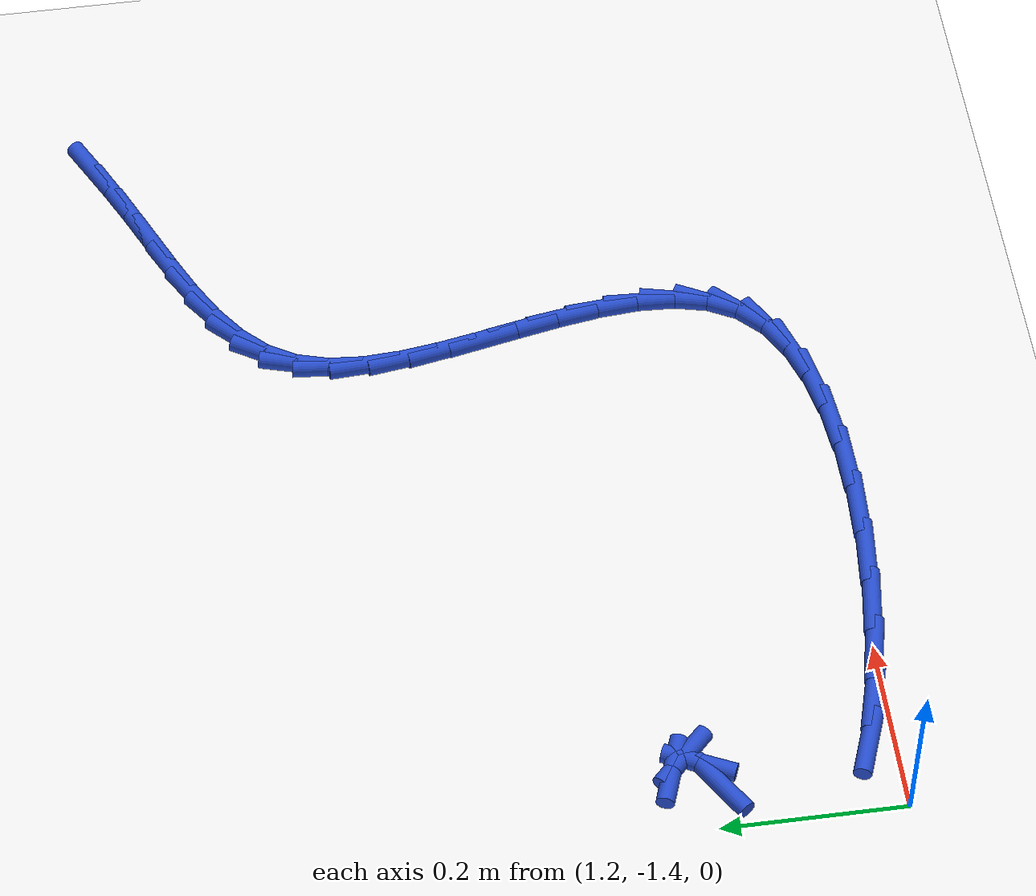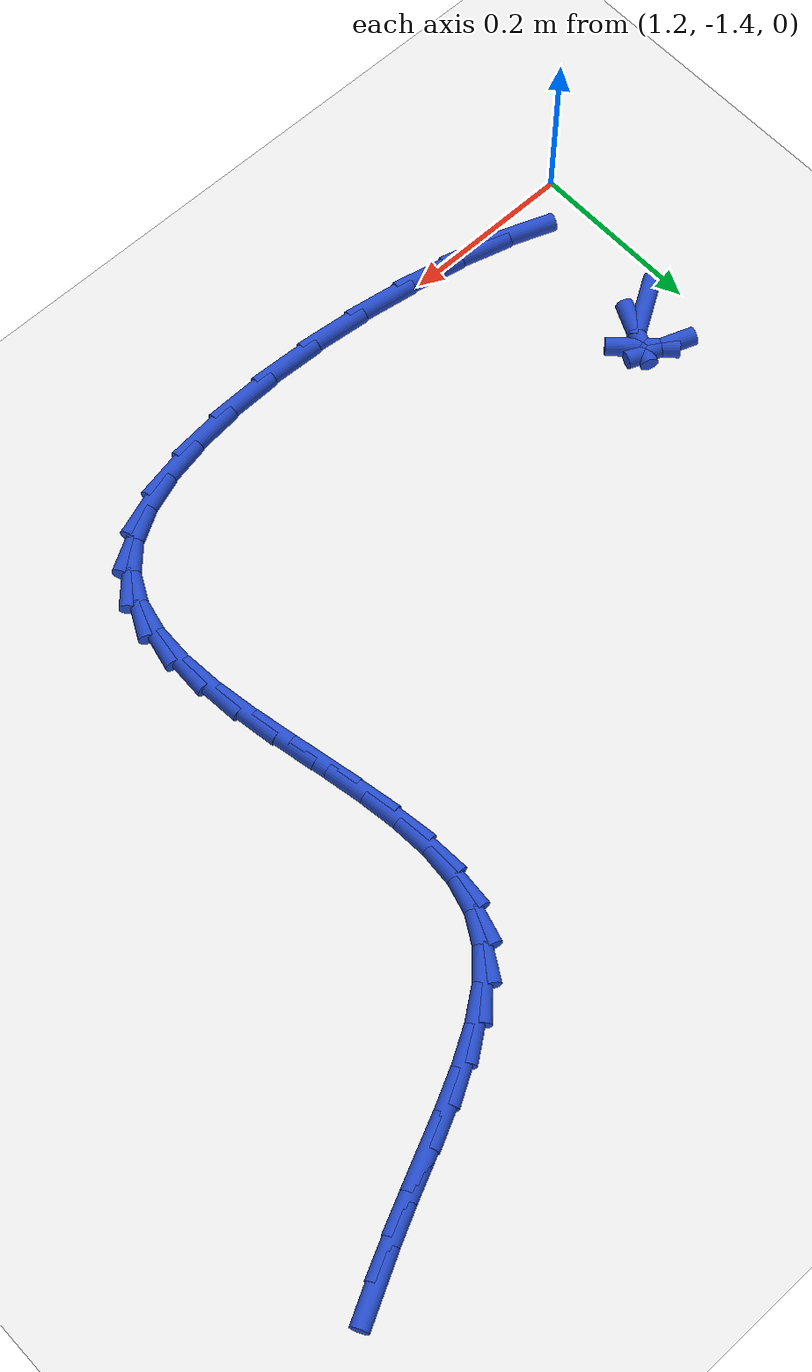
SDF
<sdf version="1.6">
 <world name="default">
  <model name="ground_plane">
   <static>1</static>
   <link name="link">
    <collision name="collision">
     <geometry><plane><normal>0 0 1</normal><size>100 100</size></plane></geometry>
     <surface><friction><ode><mu>100</mu><mu2>50</mu2></ode></friction></surface>
    </collision>
    <visual name="visual">
     <cast_shadows>0</cast_shadows>
     <geometry><plane><normal>0 0 1</normal><size>100 100</size></plane></geometry>
     <material>
      <script><uri>file://media/materials/scripts/gazebo.material</uri><name>Gazebo/WhiteGlow</name></script>
     </material>
    </visual>
   </link>
  </model>
  <model name="line">
   <link name="link_130">
    <pose>2.164545561706393 -0.639430117328216 0.01 0 1.57 0.4788285845323799</pose>
    <collision name="collision">
     <geometry><cylinder><radius>0.01</radius><length>0.08</length></cylinder></geometry>
    </collision>
    <visual name="visual">
     <material>
      <script><name>Gazebo/Blue</name><uri>file://media/materials/scripts/gazebo.material</uri></script>
     </material>
     <geometry><cylinder><radius>0.01</radius><length>0.08</length></cylinder></geometry>
    </visual>
   </link>
   <link name="link_131">
    <pose>2.1269629104287087 -0.6589401299998805 0.01 0 1.57 0.4505539917640444</pose>
    <collision name="collision">
     <geometry><cylinder><radius>0.01</radius><length>0.08</length></cylinder></geometry>
    </collision>
    <visual name="visual">
     <material>
      <script><name>Gazebo/Blue</name><uri>file://media/materials/scripts/gazebo.material</uri></script>
     </material>
     <geometry><cylinder><radius>0.01</radius><length>0.08</length></cylinder></geometry>
    </visual>
   </link>
   <link name="link_132">
    <pose>2.088017881046554 -0.6777793404851532 0.01 0 1.57 0.4290296721623705</pose>
    <collision name="collision">
     <geometry><cylinder><radius>0.01</radius><length>0.08</length></cylinder></geometry>
    </collision>
    <visual name="visual">
     <material>
      <script><name>Gazebo/Blue</name><uri>file://media/materials/scripts/gazebo.material</uri></script>
     </material>
     <geometry><cylinder><radius>0.01</radius><length>0.08</length></cylinder></geometry>
    </visual>
   </link>
   <link name="link_133">
    <pose>2.0477845221644597 -0.6961839748540937 0.01 0 1.57 0.42638433185018965</pose>
    <collision name="collision">
     <geometry><cylinder><radius>0.01</radius><length>0.08</length></cylinder></geometry>
    </collision>
    <visual name="visual">
     <material>
      <script><name>Gazebo/Blue</name><uri>file://media/materials/scripts/gazebo.material</uri></script>
     </material>
     <geometry><cylinder><radius>0.01</radius><length>0.08</length></cylinder></geometry>
    </visual>
   </link>
   <link name="link_134">
    <pose>2.0070804984382105 -0.7146738625303719 0.01 0 1.57 0.4558007332169035</pose>
    <collision name="collision">
     <geometry><cylinder><radius>0.01</radius><length>0.08</length></cylinder></geometry>
    </collision>
    <visual name="visual">
     <material>
      <script><name>Gazebo/Blue</name><uri>file://media/materials/scripts/gazebo.material</uri></script>
     </material>
     <geometry><cylinder><radius>0.01</radius><length>0.08</length></cylinder></geometry>
    </visual>
   </link>
   <link name="link_135">
    <pose>1.967514231754095 -0.7340704151884521 0.01 0 1.57 0.5216241222952303</pose>
    <collision name="collision">
     <geometry><cylinder><radius>0.01</radius><length>0.08</length></cylinder></geometry>
    </collision>
    <visual name="visual">
     <material>
      <script><name>Gazebo/Blue</name><uri>file://media/materials/scripts/gazebo.material</uri></script>
     </material>
     <geometry><cylinder><radius>0.01</radius><length>0.08</length></cylinder></geometry>
    </visual>
   </link>
   <link name="link_136">
    <pose>1.9307324515139426 -0.755209654380914 0.01 0 1.57 0.6326322385269567</pose>
    <collision name="collision">
     <geometry><cylinder><radius>0.01</radius><length>0.08</length></cylinder></geometry>
    </collision>
    <visual name="visual">
     <material>
      <script><name>Gazebo/Blue</name><uri>file://media/materials/scripts/gazebo.material</uri></script>
     </material>
     <geometry><cylinder><radius>0.01</radius><length>0.08</length></cylinder></geometry>
    </visual>
   </link>
   <link name="link_137">
    <pose>1.898381887119576 -0.7789276016603383 0.01 0 1.57 0.8015011249964182</pose>
    <collision name="collision">
     <geometry><cylinder><radius>0.01</radius><length>0.08</length></cylinder></geometry>
    </collision>
    <visual name="visual">
     <material>
      <script><name>Gazebo/Blue</name><uri>file://media/materials/scripts/gazebo.material</uri></script>
     </material>
     <geometry><cylinder><radius>0.01</radius><length>0.08</length></cylinder></geometry>
    </visual>
   </link>
   <link name="link_138">
    <pose>1.8721092679728222 -0.8060602785793053 0.01 0 1.57 1.0367474833339803</pose>
    <collision name="collision">
     <geometry><cylinder><radius>0.01</radius><length>0.08</length></cylinder></geometry>
    </collision>
    <visual name="visual">
     <material>
      <script><name>Gazebo/Blue</name><uri>file://media/materials/scripts/gazebo.material</uri></script>
     </material>
     <geometry><cylinder><radius>0.01</radius><length>0.08</length></cylinder></geometry>
    </visual>
   </link>
   <link name="link_139">
    <pose>1.8535527545870234 -0.837439198052412 0.01 0 1.57 1.2939406587728848</pose>
    <collision name="collision">
     <geometry><cylinder><radius>0.01</radius><length>0.08</length></cylinder></geometry>
    </collision>
    <visual name="visual">
     <material>
      <script><name>Gazebo/Blue</name><uri>file://media/materials/scripts/gazebo.material</uri></script>
     </material>
     <geometry><cylinder><radius>0.01</radius><length>0.08</length></cylinder></geometry>
    </visual>
   </link>
   <link name="link_140">
    <pose>1.8433439676148429 -0.8733662682668627 0.01 0 1.57 1.491275211549496</pose>
    <collision name="collision">
     <geometry><cylinder><radius>0.01</radius><length>0.08</length></cylinder></geometry>
    </collision>
    <visual name="visual">
     <material>
      <script><name>Gazebo/Blue</name><uri>file://media/materials/scripts/gazebo.material</uri></script>
     </material>
     <geometry><cylinder><radius>0.01</radius><length>0.08</length></cylinder></geometry>
    </visual>
   </link>
   <link name="link_141">
    <pose>1.8401757639081748 -0.9131232902941033 0.01 0 1.57 -1.51600763312741</pose>
    <collision name="collision">
     <geometry><cylinder><radius>0.01</radius><length>0.08</length></cylinder></geometry>
    </collision>
    <visual name="visual">
     <material>
      <script><name>Gazebo/Blue</name><uri>file://media/materials/scripts/gazebo.material</uri></script>
     </material>
     <geometry><cylinder><radius>0.01</radius><length>0.08</length></cylinder></geometry>
    </visual>
   </link>
   <link name="link_142">
    <pose>1.8425204774825834 -0.9558760340962505 0.01 0 1.57 -1.4307839772518796</pose>
    <collision name="collision">
     <geometry><cylinder><radius>0.01</radius><length>0.08</length></cylinder></geometry>
    </collision>
    <visual name="visual">
     <material>
      <script><name>Gazebo/Blue</name><uri>file://media/materials/scripts/gazebo.material</uri></script>
     </material>
     <geometry><cylinder><radius>0.01</radius><length>0.08</length></cylinder></geometry>
    </visual>
   </link>
   <link name="link_143">
    <pose>1.8488504423536327 -1.0007902696354216 0.01 0 1.57 -1.3829996136641944</pose>
    <collision name="collision">
     <geometry><cylinder><radius>0.01</radius><length>0.08</length></cylinder></geometry>
    </collision>
    <visual name="visual">
     <material>
      <script><name>Gazebo/Blue</name><uri>file://media/materials/scripts/gazebo.material</uri></script>
     </material>
     <geometry><cylinder><radius>0.01</radius><length>0.08</length></cylinder></geometry>
    </visual>
   </link>
   <link name="link_144">
    <pose>1.8576379925368858 -1.047031766873731 0.01 0 1.57 -1.3657883671007762</pose>
    <collision name="collision">
     <geometry><cylinder><radius>0.01</radius><length>0.08</length></cylinder></geometry>
    </collision>
    <visual name="visual">
     <material>
      <script><name>Gazebo/Blue</name><uri>file://media/materials/scripts/gazebo.material</uri></script>
     </material>
     <geometry><cylinder><radius>0.01</radius><length>0.08</length></cylinder></geometry>
    </visual>
   </link>
   <link name="link_145">
    <pose>1.8673554620479076 -1.0937662957732963 0.01 0 1.57 -1.3766971513679065</pose>
    <collision name="collision">
     <geometry><cylinder><radius>0.01</radius><length>0.08</length></cylinder></geometry>
    </collision>
    <visual name="visual">
     <material>
      <script><name>Gazebo/Blue</name><uri>file://media/materials/scripts/gazebo.material</uri></script>
     </material>
     <geometry><cylinder><radius>0.01</radius><length>0.08</length></cylinder></geometry>
    </visual>
   </link>
   <link name="link_146">
    <pose>1.8764751849022607 -1.1401596262962335 0.01 0 1.57 -1.4173324236944869</pose>
    <collision name="collision">
     <geometry><cylinder><radius>0.01</radius><length>0.08</length></cylinder></geometry>
    </collision>
    <visual name="visual">
     <material>
      <script><name>Gazebo/Blue</name><uri>file://media/materials/scripts/gazebo.material</uri></script>
     </material>
     <geometry><cylinder><radius>0.01</radius><length>0.08</length></cylinder></geometry>
    </visual>
   </link>
   <link name="link_147">
    <pose>1.8834694951155102 -1.1853775284046597 0.01 0 1.57 -1.4936213426711011</pose>
    <collision name="collision">
     <geometry><cylinder><radius>0.01</radius><length>0.08</length></cylinder></geometry>
    </collision>
    <visual name="visual">
     <material>
      <script><name>Gazebo/Blue</name><uri>file://media/materials/scripts/gazebo.material</uri></script>
     </material>
     <geometry><cylinder><radius>0.01</radius><length>0.08</length></cylinder></geometry>
    </visual>
   </link>
   <link name="link_148">
    <pose>1.88681072670322 -1.228585772060692 0.01 0 1.57 1.5252551278413624</pose>
    <collision name="collision">
     <geometry><cylinder><radius>0.01</radius><length>0.08</length></cylinder></geometry>
    </collision>
    <visual name="visual">
     <material>
      <script><name>Gazebo/Blue</name><uri>file://media/materials/scripts/gazebo.material</uri></script>
     </material>
     <geometry><cylinder><radius>0.01</radius><length>0.08</length></cylinder></geometry>
    </visual>
   </link>
   <link name="link_149">
    <pose>1.884971213680953 -1.2689501272264452 0.01 0 1.57 1.3418797510108087</pose>
    <collision name="collision">
     <geometry><cylinder><radius>0.01</radius><length>0.08</length></cylinder></geometry>
    </collision>
    <visual name="visual">
     <material>
      <script><name>Gazebo/Blue</name><uri>file://media/materials/scripts/gazebo.material</uri></script>
     </material>
     <geometry><cylinder><radius>0.01</radius><length>0.08</length></cylinder></geometry>
    </visual>
   </link>
   <link name="link_150">
    <pose>1.876423290064274 -1.3056363638640363 0.01 0 1.57 1.0899671004875449</pose>
    <collision name="collision">
     <geometry><cylinder><radius>0.01</radius><length>0.08</length></cylinder></geometry>
    </collision>
    <visual name="visual">
     <material>
      <script><name>Gazebo/Blue</name><uri>file://media/materials/scripts/gazebo.material</uri></script>
     </material>
     <geometry><cylinder><radius>0.01</radius><length>0.08</length></cylinder></geometry>
    </visual>
   </link>
   <link name="link_151">
    <pose>1.859639289868747 -1.3378102519355826 0.01 0 1.57 0.7907141610808374</pose>
    <collision name="collision">
     <geometry><cylinder><radius>0.01</radius><length>0.08</length></cylinder></geometry>
    </collision>
    <visual name="visual">
     <material>
      <script><name>Gazebo/Blue</name><uri>file://media/materials/scripts/gazebo.material</uri></script>
     </material>
     <geometry><cylinder><radius>0.01</radius><length>0.08</length></cylinder></geometry>
    </visual>
   </link>
   <link name="link_152">
    <pose>1.8330945892863988 -1.3646386866543112 0.01 0 1.57 0.5164582404263551</pose>
    <collision name="collision">
     <geometry><cylinder><radius>0.01</radius><length>0.08</length></cylinder></geometry>
    </collision>
    <visual name="visual">
     <material>
      <script><name>Gazebo/Blue</name><uri>file://media/materials/scripts/gazebo.material</uri></script>
     </material>
     <geometry><cylinder><radius>0.01</radius><length>0.08</length></cylinder></geometry>
    </visual>
   </link>
   <link name="link_153">
    <pose>1.796152434848757 -1.3856169718900802 0.01 0 1.57 0.3240920714699012</pose>
    <collision name="collision">
     <geometry><cylinder><radius>0.01</radius><length>0.08</length></cylinder></geometry>
    </collision>
    <visual name="visual">
     <material>
      <script><name>Gazebo/Blue</name><uri>file://media/materials/scripts/gazebo.material</uri></script>
     </material>
     <geometry><cylinder><radius>0.01</radius><length>0.08</length></cylinder></geometry>
    </visual>
   </link>
   <link name="link_154">
    <pose>1.7502921887603182 -1.401023127946131 0.01 0 1.57 0.19063768539785447</pose>
    <collision name="collision">
     <geometry><cylinder><radius>0.01</radius><length>0.08</length></cylinder></geometry>
    </collision>
    <visual name="visual">
     <material>
      <script><name>Gazebo/Blue</name><uri>file://media/materials/scripts/gazebo.material</uri></script>
     </material>
     <geometry><cylinder><radius>0.01</radius><length>0.08</length></cylinder></geometry>
    </visual>
   </link>
   <link name="link_155">
    <pose>1.6973017288126815 -1.4112492899744637 0.01 0 1.57 0.09296020894683144</pose>
    <collision name="collision">
     <geometry><cylinder><radius>0.01</radius><length>0.08</length></cylinder></geometry>
    </collision>
    <visual name="visual">
     <material>
      <script><name>Gazebo/Blue</name><uri>file://media/materials/scripts/gazebo.material</uri></script>
     </material>
     <geometry><cylinder><radius>0.01</radius><length>0.08</length></cylinder></geometry>
    </visual>
   </link>
   <link name="link_156">
    <pose>1.6389689327974453 -1.4166875931270808 0.01 0 1.57 0.016844838712378987</pose>
    <collision name="collision">
     <geometry><cylinder><radius>0.01</radius><length>0.08</length></cylinder></geometry>
    </collision>
    <visual name="visual">
     <material>
      <script><name>Gazebo/Blue</name><uri>file://media/materials/scripts/gazebo.material</uri></script>
     </material>
     <geometry><cylinder><radius>0.01</radius><length>0.08</length></cylinder></geometry>
    </visual>
   </link>
   <link name="link_157">
    <pose>1.5770816785062123 -1.417730172555982 0.01 0 1.57 -0.04648386353405334</pose>
    <collision name="collision">
     <geometry><cylinder><radius>0.01</radius><length>0.08</length></cylinder></geometry>
    </collision>
    <visual name="visual">
     <material>
      <script><name>Gazebo/Blue</name><uri>file://media/materials/scripts/gazebo.material</uri></script>
     </material>
     <geometry><cylinder><radius>0.01</radius><length>0.08</length></cylinder></geometry>
    </visual>
   </link>
   <link name="link_158">
    <pose>1.5134278437305808 -1.414769163413169 0.01 0 1.57 -0.10292279436402188</pose>
    <collision name="collision">
     <geometry><cylinder><radius>0.01</radius><length>0.08</length></cylinder></geometry>
    </collision>
    <visual name="visual">
     <material>
      <script><name>Gazebo/Blue</name><uri>file://media/materials/scripts/gazebo.material</uri></script>
     </material>
     <geometry><cylinder><radius>0.01</radius><length>0.08</length></cylinder></geometry>
    </visual>
   </link>
   <link name="link_159">
    <pose>1.4497953062621503 -1.4081967008506417 0.01 0 1.57 -0.15707840477254384</pose>
    <collision name="collision">
     <geometry><cylinder><radius>0.01</radius><length>0.08</length></cylinder></geometry>
    </collision>
    <visual name="visual">
     <material>
      <script><name>Gazebo/Blue</name><uri>file://media/materials/scripts/gazebo.material</uri></script>
     </material>
     <geometry><cylinder><radius>0.01</radius><length>0.08</length></cylinder></geometry>
    </visual>
   </link>
   <link name="link_160">
    <pose>1.3879719438925193 -1.3984049200204016 0.01 0 1.57 -0.21342217785369155</pose>
    <collision name="collision">
     <geometry><cylinder><radius>0.01</radius><length>0.08</length></cylinder></geometry>
    </collision>
    <visual name="visual">
     <material>
      <script><name>Gazebo/Blue</name><uri>file://media/materials/scripts/gazebo.material</uri></script>
     </material>
     <geometry><cylinder><radius>0.01</radius><length>0.08</length></cylinder></geometry>
    </visual>
   </link>
   <link name="link_161">
    <pose>1.3297456344132896 -1.3857859560744494 0.01 0 1.57 -0.27753796915882</pose>
    <collision name="collision">
     <geometry><cylinder><radius>0.01</radius><length>0.08</length></cylinder></geometry>
    </collision>
    <visual name="visual">
     <material>
      <script><name>Gazebo/Blue</name><uri>file://media/materials/scripts/gazebo.material</uri></script>
     </material>
     <geometry><cylinder><radius>0.01</radius><length>0.08</length></cylinder></geometry>
    </visual>
   </link>
   <link name="link_162">
    <pose>1.2769042556160604 -1.3707319441647858 0.01 0 1.57 -0.35821788238876867</pose>
    <collision name="collision">
     <geometry><cylinder><radius>0.01</radius><length>0.08</length></cylinder></geometry>
    </collision>
    <visual name="visual">
     <material>
      <script><name>Gazebo/Blue</name><uri>file://media/materials/scripts/gazebo.material</uri></script>
     </material>
     <geometry><cylinder><radius>0.01</radius><length>0.08</length></cylinder></geometry>
    </visual>
   </link>
   <link name="link_170">
    <pose>1.2465772368061754 -1.21006926934864 0.01 0 1.57 0.5512751550809288</pose>
    <collision name="collision">
     <geometry><cylinder><radius>0.01</radius><length>0.08</length></cylinder></geometry>
    </collision>
    <visual name="visual">
     <material>
      <script><name>Gazebo/Blue</name><uri>file://media/materials/scripts/gazebo.material</uri></script>
     </material>
     <geometry><cylinder><radius>0.01</radius><length>0.08</length></cylinder></geometry>
    </visual>
   </link>
   <link name="link_171">
    <pose>1.276235347633054 -1.191833651582399 0.01 0 1.57 1.1281488211836967</pose>
    <collision name="collision">
     <geometry><cylinder><radius>0.01</radius><length>0.08</length></cylinder></geometry>
    </collision>
    <visual name="visual">
     <material>
      <script><name>Gazebo/Blue</name><uri>file://media/materials/scripts/gazebo.material</uri></script>
     </material>
     <geometry><cylinder><radius>0.01</radius><length>0.08</length></cylinder></geometry>
    </visual>
   </link>
   <link name="link_172">
    <pose>1.28372642016331 -1.1760303297205277 0.01 0 1.57 -0.7831697860649035</pose>
    <collision name="collision">
     <geometry><cylinder><radius>0.01</radius><length>0.08</length></cylinder></geometry>
    </collision>
    <visual name="visual">
     <material>
      <script><name>Gazebo/Blue</name><uri>file://media/materials/scripts/gazebo.material</uri></script>
     </material>
     <geometry><cylinder><radius>0.01</radius><length>0.08</length></cylinder></geometry>
    </visual>
   </link>
   <link name="link_173">
    <pose>1.270228758650281 -1.1625926903208477 0.01 0 1.57 -0.34995223172296225</pose>
    <collision name="collision">
     <geometry><cylinder><radius>0.01</radius><length>0.08</length></cylinder></geometry>
    </collision>
    <visual name="visual">
     <material>
      <script><name>Gazebo/Blue</name><uri>file://media/materials/scripts/gazebo.material</uri></script>
     </material>
     <geometry><cylinder><radius>0.01</radius><length>0.08</length></cylinder></geometry>
    </visual>
   </link>
  </model>
 </world>
</sdf>
